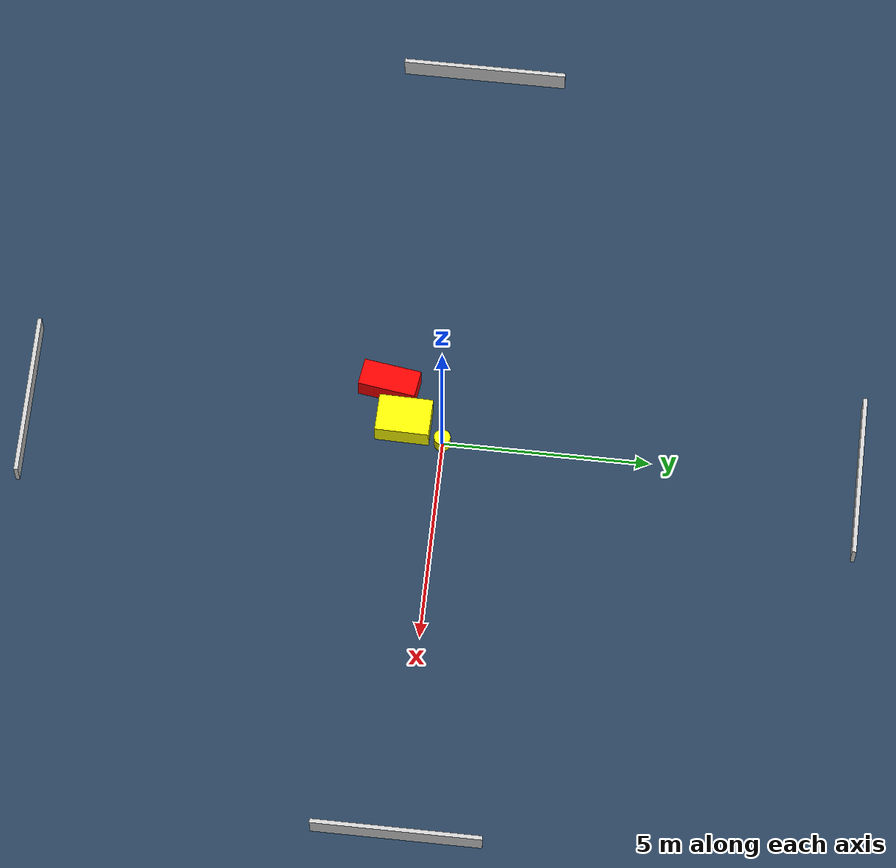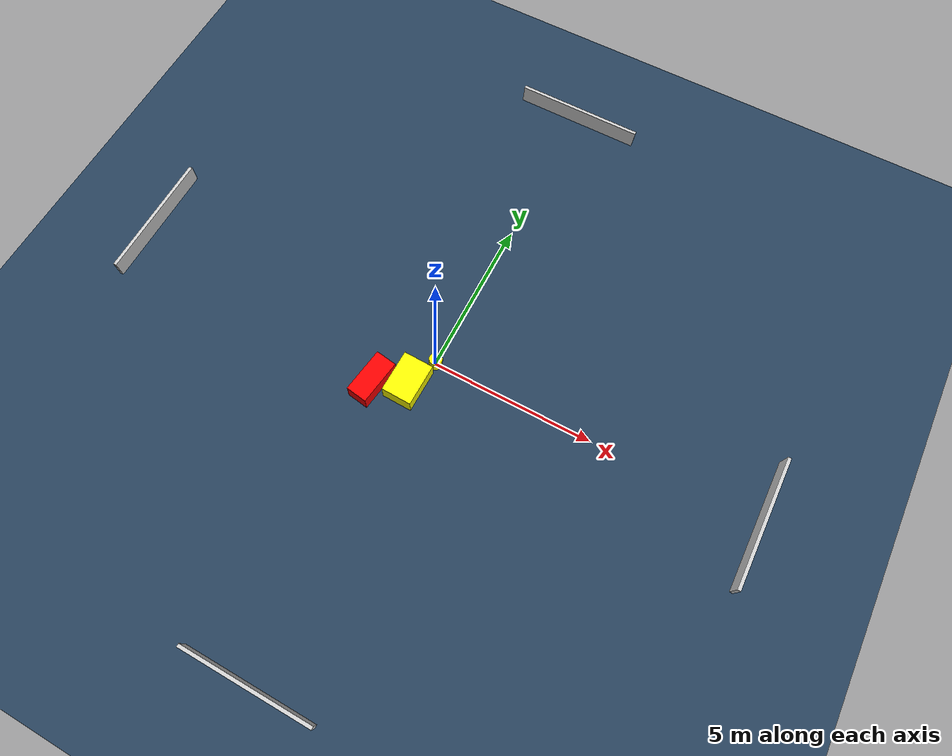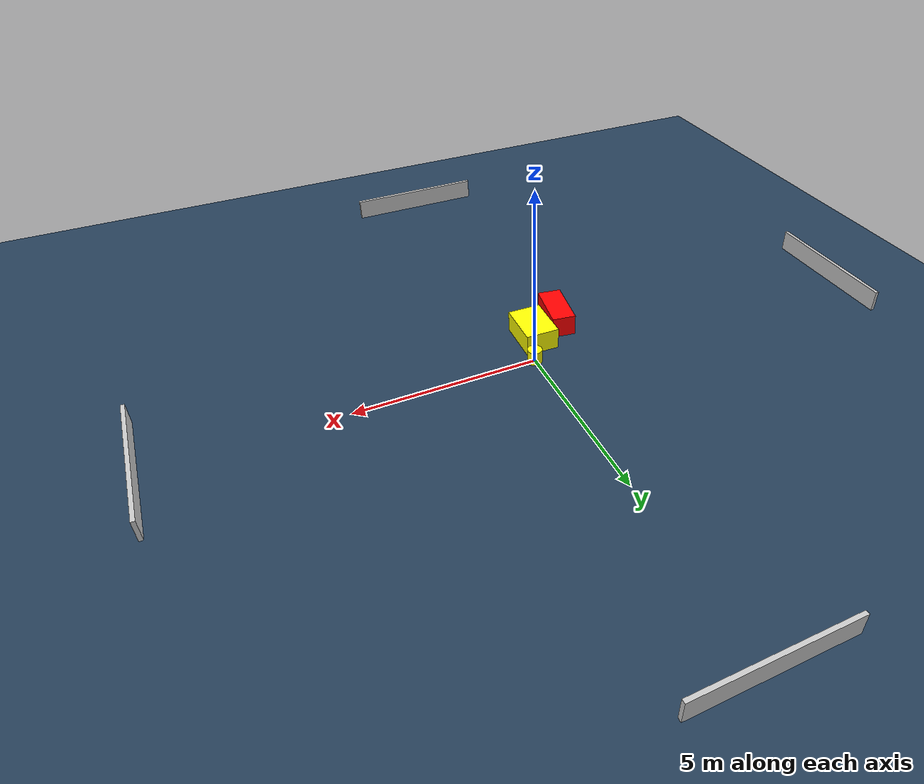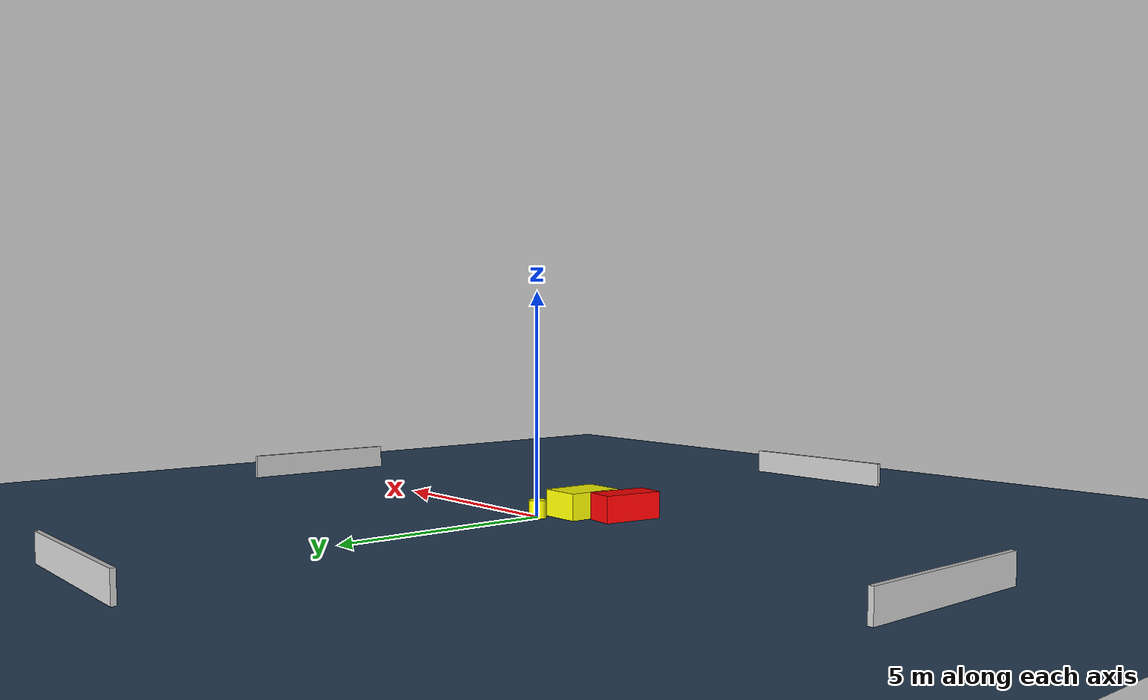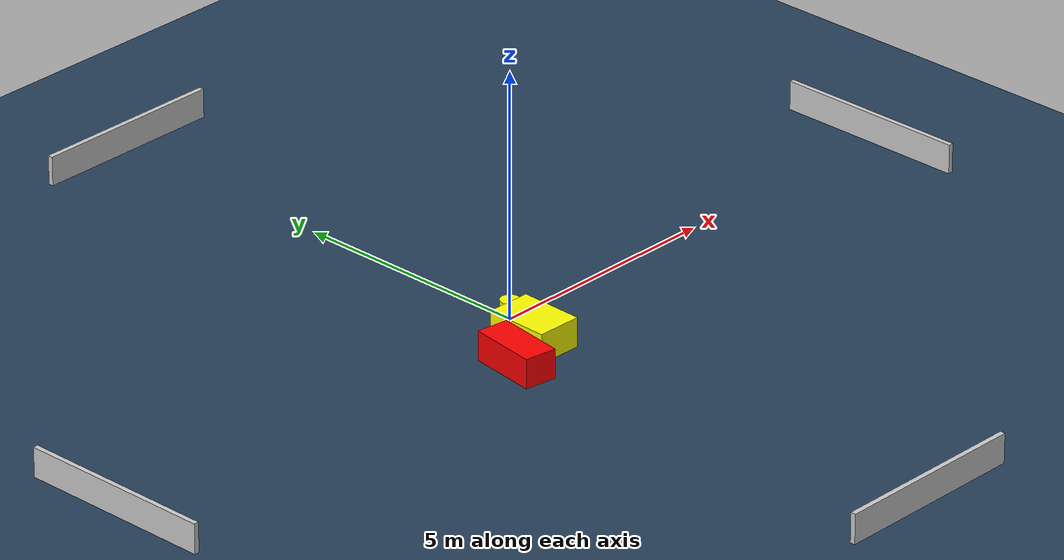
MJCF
<?xml version="1.0" ?>
<mujoco model="generated_environment">
  <option timestep="0.01" integrator="RK4" cone="elliptic"/>
  <default>
    <geom density="1"/>
  </default>
  <asset>
    <texture builtin="gradient" height="3072" name="skybox" rgb1="0.3 0.5 0.7" rgb2="0 0 0" type="skybox" width="512"/>
    <texture builtin="checker" height="300" name="groundplane" rgb1="0.2 0.3 0.4" rgb2="0.1 0.2 0.3" type="2d" width="300"/>
    <material name="groundplane" reflectance="0.2" texrepeat="5 5" texture="groundplane"/>
  </asset>
  <worldbody>
    <light dir="0 0 -1" directional="true" pos="0 0 1.5"/>
    <geom condim="3" friction="0.5 0.005 0.001" material="groundplane" name="floor" pos="0 0 0" size="0 0 0.05" type="plane"/>
    <body name="walls">
      <geom name="wall_1" condim="4" pos="-10.0 0.0 0.3" rgba="0.800000011920929 0.800000011920929 0.800000011920929 1.0" size="0.05 2.0 0.3" type="box"/>
      <geom name="wall_2" condim="4" pos="10.0 0.0 0.3" rgba="0.800000011920929 0.800000011920929 0.800000011920929 1.0" size="0.05 2.0 0.3" type="box"/>
      <geom name="wall_3" condim="4" pos="0.0 -10.0 0.3" rgba="0.800000011920929 0.800000011920929 0.800000011920929 1.0" size="2.0 0.05 0.3" type="box"/>
      <geom name="wall_4" condim="4" pos="0.0 10.0 0.3" rgba="0.800000011920929 0.800000011920929 0.800000011920929 1.0" size="2.0 0.05 0.3" type="box"/>
    </body>
    <body name="robot">
      <joint name="joint_x" type="slide" pos="0 0 0" axis="1 0 0"/>
      <joint name="joint_y" type="slide" pos="0 0 0" axis="0 1 0"/>
      <geom name="robot" type="cylinder" pos="0.0 0.0 0.2" size="0.2 0.2 0.0" mass="5.0" friction="1.0 0.005 0.0001" condim="4" rgba="1.0 1.0 0.0 1.0"/>
    </body>
    <body name="obstacle_1_movable">
      <geom name="obstacle_1_movable" condim="4" pos="-0.40390353817441466 -0.9640439581647016 0.3" euler="0 0 358.7006417850405" friction="0.0 0.005 0.001" rgba="1.0 1.0 0.0 1.0" size="0.46378007148308104 0.6505212302453001 0.3" type="box" mass="0.1"/>
      <joint type="free"/>
    </body>
    <body name="obstacle_2_static">
      <geom name="obstacle_2_static" condim="4" pos="-1.3372716569327678 -1.4121075689154081 0.3" euler="0 0 261.6244461757222" friction="0.0 0.005 0.001" rgba="1.0 0.0 0.0 1.0" size="0.7003543970645227 0.3289258167394433 0.3" type="box"/>
    </body>
  </worldbody>
  <actuator>
    <motor name="actuator_x" joint="joint_x" gear="1" ctrlrange="-1 1"/>
    <motor name="actuator_y" joint="joint_y" gear="1" ctrlrange="-1 1"/>
  </actuator>
</mujoco>
